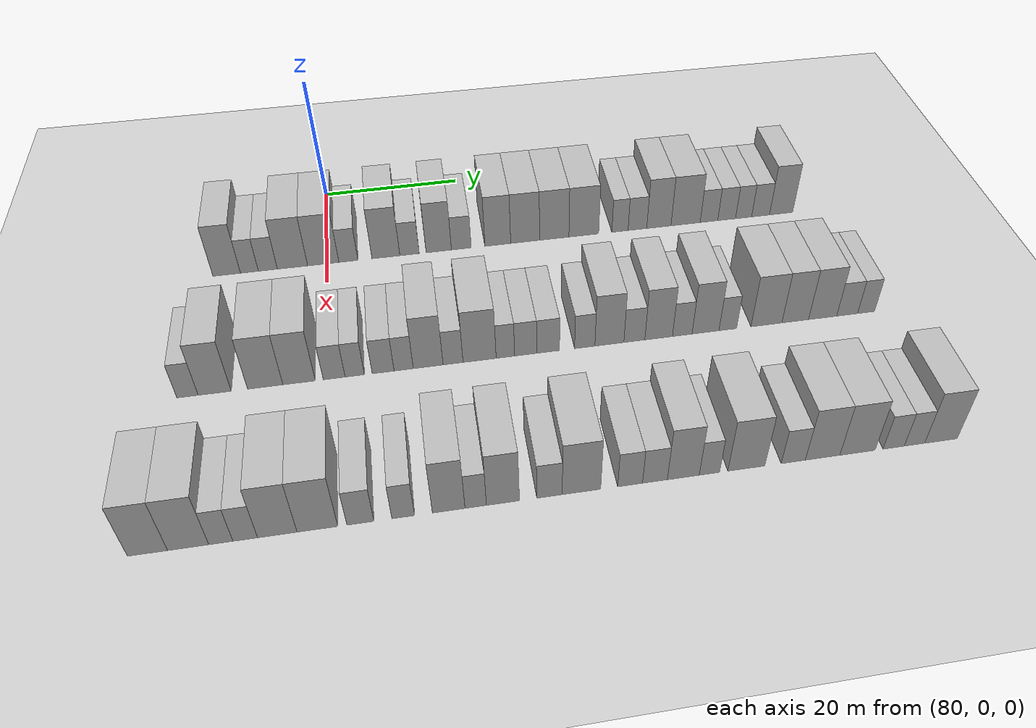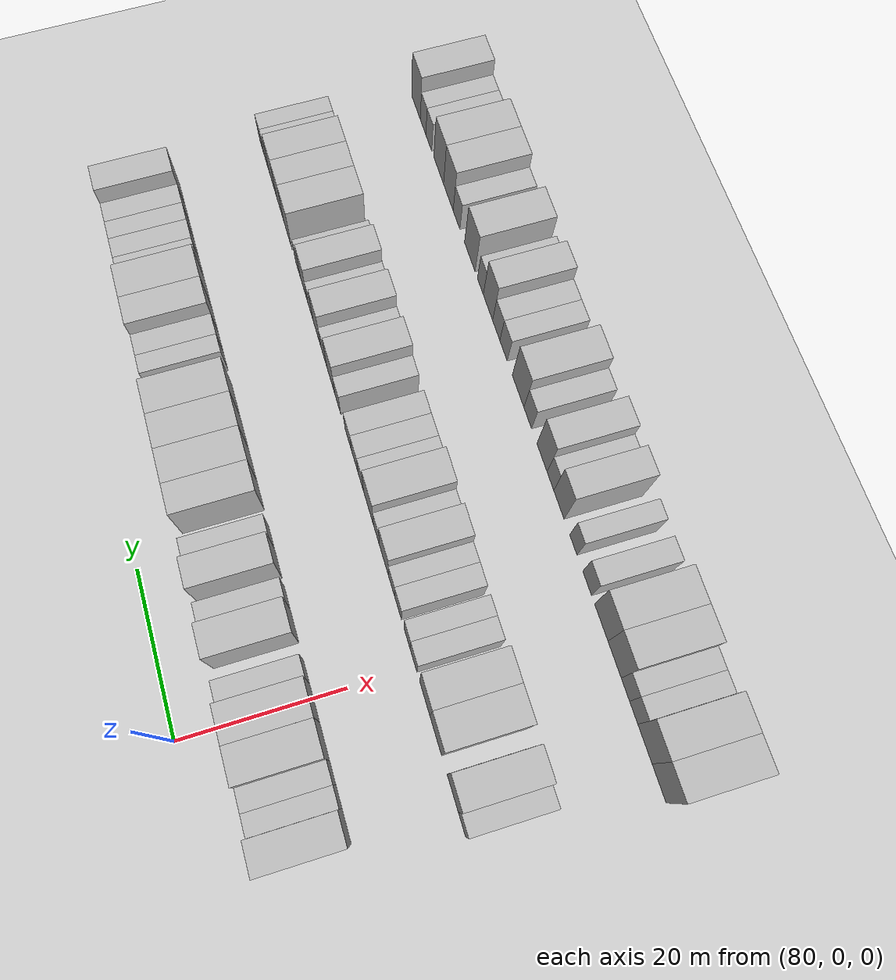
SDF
<sdf version="1.6">
 <world name="default">
  <include>
   <name>ground_plane_2</name>
   <uri>model://HANNAS_ground_plane</uri>
   <pose>100 0 0  0 0 0</pose>
  </include>
  <model name="building_627">
   <static>1</static>
   <pose>91.0000 -13.8945 0 0.000000 0.000000 0.000000</pose>
   <link name="link">
    <pose>0 0 4.50 0 0 0</pose>
    <collision name="collision"><geometry><box><size>10.0000 3.7850 9.0000</size></box></geometry></collision>
    <visual name="visual">
     <cast_shadows>0</cast_shadows>
     <geometry><box><size>10.0000 3.7850 9.0000</size></box></geometry>
     <material>
      <script>
       <uri>model://HANNAS_wall/materials/scripts</uri>
       <uri>model://HANNAS_wall/materials/textures</uri>
       <name>vrc/HANNAS_wall</name>
      </script>
     </material>
    </visual>
   </link>
  </model>
  <model name="building_628">
   <static>1</static>
   <pose>91.0000 -10.7650 0 0.000000 0.000000 0.000000</pose>
   <link name="link">
    <pose>0 0 3.00 0 0 0</pose>
    <collision name="collision"><geometry><box><size>10.0000 2.4740 6.0000</size></box></geometry></collision>
    <visual name="visual">
     <cast_shadows>0</cast_shadows>
     <geometry><box><size>10.0000 2.4740 6.0000</size></box></geometry>
     <material>
      <script>
       <uri>model://HANNAS_wall/materials/scripts</uri>
       <uri>model://HANNAS_wall/materials/textures</uri>
       <name>vrc/HANNAS_wall</name>
      </script>
     </material>
    </visual>
   </link>
  </model>
  <model name="building_629">
   <static>1</static>
   <pose>91.0000 -8.2067 0 0.000000 0.000000 0.000000</pose>
   <link name="link">
    <pose>0 0 3.00 0 0 0</pose>
    <collision name="collision"><geometry><box><size>10.0000 2.6427 6.0000</size></box></geometry></collision>
    <visual name="visual">
     <cast_shadows>0</cast_shadows>
     <geometry><box><size>10.0000 2.6427 6.0000</size></box></geometry>
     <material>
      <script>
       <uri>model://HANNAS_wall/materials/scripts</uri>
       <uri>model://HANNAS_wall/materials/textures</uri>
       <name>vrc/HANNAS_wall</name>
      </script>
     </material>
    </visual>
   </link>
  </model>
  <model name="building_630">
   <static>1</static>
   <pose>91.0000 -4.7748 0 0.000000 0.000000 0.000000</pose>
   <link name="link">
    <pose>0 0 4.50 0 0 0</pose>
    <collision name="collision"><geometry><box><size>10.0000 4.2210 9.0000</size></box></geometry></collision>
    <visual name="visual">
     <cast_shadows>0</cast_shadows>
     <geometry><box><size>10.0000 4.2210 9.0000</size></box></geometry>
     <material>
      <script>
       <uri>model://HANNAS_wall/materials/scripts</uri>
       <uri>model://HANNAS_wall/materials/textures</uri>
       <name>vrc/HANNAS_wall</name>
      </script>
     </material>
    </visual>
   </link>
  </model>
  <model name="building_631">
   <static>1</static>
   <pose>91.0000 -0.4696 0 0.000000 0.000000 0.000000</pose>
   <link name="link">
    <pose>0 0 4.50 0 0 0</pose>
    <collision name="collision"><geometry><box><size>10.0000 4.3893 9.0000</size></box></geometry></collision>
    <visual name="visual">
     <cast_shadows>0</cast_shadows>
     <geometry><box><size>10.0000 4.3893 9.0000</size></box></geometry>
     <material>
      <script>
       <uri>model://HANNAS_wall/materials/scripts</uri>
       <uri>model://HANNAS_wall/materials/textures</uri>
       <name>vrc/HANNAS_wall</name>
      </script>
     </material>
    </visual>
   </link>
  </model>
  <model name="building_632">
   <static>1</static>
   <pose>91.0000 3.0725 0 0.000000 0.000000 0.000000</pose>
   <link name="link">
    <pose>0 0 3.00 0 0 0</pose>
    <collision name="collision"><geometry><box><size>10.0000 2.6950 6.0000</size></box></geometry></collision>
    <visual name="visual">
     <cast_shadows>0</cast_shadows>
     <geometry><box><size>10.0000 2.6950 6.0000</size></box></geometry>
     <material>
      <script>
       <uri>model://HANNAS_wall/materials/scripts</uri>
       <uri>model://HANNAS_wall/materials/textures</uri>
       <name>vrc/HANNAS_wall</name>
      </script>
     </material>
    </visual>
   </link>
  </model>
  <model name="building_633">
   <static>1</static>
   <pose>91.0000 8.4111 0 0.000000 0.000000 0.000000</pose>
   <link name="link">
    <pose>0 0 4.50 0 0 0</pose>
    <collision name="collision"><geometry><box><size>10.0000 3.9822 9.0000</size></box></geometry></collision>
    <visual name="visual">
     <cast_shadows>0</cast_shadows>
     <geometry><box><size>10.0000 3.9822 9.0000</size></box></geometry>
     <material>
      <script>
       <uri>model://HANNAS_wall/materials/scripts</uri>
       <uri>model://HANNAS_wall/materials/textures</uri>
       <name>vrc/HANNAS_wall</name>
      </script>
     </material>
    </visual>
   </link>
  </model>
  <model name="building_634">
   <static>1</static>
   <pose>91.0000 11.7870 0 0.000000 0.000000 0.000000</pose>
   <link name="link">
    <pose>0 0 3.00 0 0 0</pose>
    <collision name="collision"><geometry><box><size>10.0000 2.7695 6.0000</size></box></geometry></collision>
    <visual name="visual">
     <cast_shadows>0</cast_shadows>
     <geometry><box><size>10.0000 2.7695 6.0000</size></box></geometry>
     <material>
      <script>
       <uri>model://HANNAS_wall/materials/scripts</uri>
       <uri>model://HANNAS_wall/materials/textures</uri>
       <name>vrc/HANNAS_wall</name>
      </script>
     </material>
    </visual>
   </link>
  </model>
  <model name="building_635">
   <static>1</static>
   <pose>91.0000 16.0039 0 0.000000 0.000000 0.000000</pose>
   <link name="link">
    <pose>0 0 4.50 0 0 0</pose>
    <collision name="collision"><geometry><box><size>10.0000 3.6644 9.0000</size></box></geometry></collision>
    <visual name="visual">
     <cast_shadows>0</cast_shadows>
     <geometry><box><size>10.0000 3.6644 9.0000</size></box></geometry>
     <material>
      <script>
       <uri>model://HANNAS_wall/materials/scripts</uri>
       <uri>model://HANNAS_wall/materials/textures</uri>
       <name>vrc/HANNAS_wall</name>
      </script>
     </material>
    </visual>
   </link>
  </model>
  <model name="building_636">
   <static>1</static>
   <pose>91.0000 19.2733 0 0.000000 0.000000 0.000000</pose>
   <link name="link">
    <pose>0 0 3.00 0 0 0</pose>
    <collision name="collision"><geometry><box><size>10.0000 2.8745 6.0000</size></box></geometry></collision>
    <visual name="visual">
     <cast_shadows>0</cast_shadows>
     <geometry><box><size>10.0000 2.8745 6.0000</size></box></geometry>
     <material>
      <script>
       <uri>model://HANNAS_wall/materials/scripts</uri>
       <uri>model://HANNAS_wall/materials/textures</uri>
       <name>vrc/HANNAS_wall</name>
      </script>
     </material>
    </visual>
   </link>
  </model>
  <model name="building_637">
   <static>1</static>
   <pose>91.0000 24.6001 0 0.000000 0.000000 0.000000</pose>
   <link name="link">
    <pose>0 0 4.50 0 0 0</pose>
    <collision name="collision"><geometry><box><size>10.0000 3.7789 9.0000</size></box></geometry></collision>
    <visual name="visual">
     <cast_shadows>0</cast_shadows>
     <geometry><box><size>10.0000 3.7789 9.0000</size></box></geometry>
     <material>
      <script>
       <uri>model://HANNAS_wall/materials/scripts</uri>
       <uri>model://HANNAS_wall/materials/textures</uri>
       <name>vrc/HANNAS_wall</name>
      </script>
     </material>
    </visual>
   </link>
  </model>
  <model name="building_638">
   <static>1</static>
   <pose>91.0000 28.6218 0 0.000000 0.000000 0.000000</pose>
   <link name="link">
    <pose>0 0 4.50 0 0 0</pose>
    <collision name="collision"><geometry><box><size>10.0000 4.2646 9.0000</size></box></geometry></collision>
    <visual name="visual">
     <cast_shadows>0</cast_shadows>
     <geometry><box><size>10.0000 4.2646 9.0000</size></box></geometry>
     <material>
      <script>
       <uri>model://HANNAS_wall/materials/scripts</uri>
       <uri>model://HANNAS_wall/materials/textures</uri>
       <name>vrc/HANNAS_wall</name>
      </script>
     </material>
    </visual>
   </link>
  </model>
  <model name="building_639">
   <static>1</static>
   <pose>91.0000 32.9350 0 0.000000 0.000000 0.000000</pose>
   <link name="link">
    <pose>0 0 4.50 0 0 0</pose>
    <collision name="collision"><geometry><box><size>10.0000 4.3617 9.0000</size></box></geometry></collision>
    <visual name="visual">
     <cast_shadows>0</cast_shadows>
     <geometry><box><size>10.0000 4.3617 9.0000</size></box></geometry>
     <material>
      <script>
       <uri>model://HANNAS_wall/materials/scripts</uri>
       <uri>model://HANNAS_wall/materials/textures</uri>
       <name>vrc/HANNAS_wall</name>
      </script>
     </material>
    </visual>
   </link>
  </model>
  <model name="building_640">
   <static>1</static>
   <pose>91.0000 37.3389 0 0.000000 0.000000 0.000000</pose>
   <link name="link">
    <pose>0 0 4.50 0 0 0</pose>
    <collision name="collision"><geometry><box><size>10.0000 4.4461 9.0000</size></box></geometry></collision>
    <visual name="visual">
     <cast_shadows>0</cast_shadows>
     <geometry><box><size>10.0000 4.4461 9.0000</size></box></geometry>
     <material>
      <script>
       <uri>model://HANNAS_wall/materials/scripts</uri>
       <uri>model://HANNAS_wall/materials/textures</uri>
       <name>vrc/HANNAS_wall</name>
      </script>
     </material>
    </visual>
   </link>
  </model>
  <model name="building_641">
   <static>1</static>
   <pose>91.0000 42.7816 0 0.000000 0.000000 0.000000</pose>
   <link name="link">
    <pose>0 0 3.00 0 0 0</pose>
    <collision name="collision"><geometry><box><size>10.0000 2.4393 6.0000</size></box></geometry></collision>
    <visual name="visual">
     <cast_shadows>0</cast_shadows>
     <geometry><box><size>10.0000 2.4393 6.0000</size></box></geometry>
     <material>
      <script>
       <uri>model://HANNAS_wall/materials/scripts</uri>
       <uri>model://HANNAS_wall/materials/textures</uri>
       <name>vrc/HANNAS_wall</name>
      </script>
     </material>
    </visual>
   </link>
  </model>
  <model name="building_642">
   <static>1</static>
   <pose>91.0000 45.4196 0 0.000000 0.000000 0.000000</pose>
   <link name="link">
    <pose>0 0 3.00 0 0 0</pose>
    <collision name="collision"><geometry><box><size>10.0000 2.8368 6.0000</size></box></geometry></collision>
    <visual name="visual">
     <cast_shadows>0</cast_shadows>
     <geometry><box><size>10.0000 2.8368 6.0000</size></box></geometry>
     <material>
      <script>
       <uri>model://HANNAS_wall/materials/scripts</uri>
       <uri>model://HANNAS_wall/materials/textures</uri>
       <name>vrc/HANNAS_wall</name>
      </script>
     </material>
    </visual>
   </link>
  </model>
  <model name="building_643">
   <static>1</static>
   <pose>91.0000 48.6858 0 0.000000 0.000000 0.000000</pose>
   <link name="link">
    <pose>0 0 4.50 0 0 0</pose>
    <collision name="collision"><geometry><box><size>10.0000 3.6956 9.0000</size></box></geometry></collision>
    <visual name="visual">
     <cast_shadows>0</cast_shadows>
     <geometry><box><size>10.0000 3.6956 9.0000</size></box></geometry>
     <material>
      <script>
       <uri>model://HANNAS_wall/materials/scripts</uri>
       <uri>model://HANNAS_wall/materials/textures</uri>
       <name>vrc/HANNAS_wall</name>
      </script>
     </material>
    </visual>
   </link>
  </model>
  <model name="building_644">
   <static>1</static>
   <pose>91.0000 52.7779 0 0.000000 0.000000 0.000000</pose>
   <link name="link">
    <pose>0 0 4.50 0 0 0</pose>
    <collision name="collision"><geometry><box><size>10.0000 4.4885 9.0000</size></box></geometry></collision>
    <visual name="visual">
     <cast_shadows>0</cast_shadows>
     <geometry><box><size>10.0000 4.4885 9.0000</size></box></geometry>
     <material>
      <script>
       <uri>model://HANNAS_wall/materials/scripts</uri>
       <uri>model://HANNAS_wall/materials/textures</uri>
       <name>vrc/HANNAS_wall</name>
      </script>
     </material>
    </visual>
   </link>
  </model>
  <model name="building_645">
   <static>1</static>
   <pose>91.0000 56.3801 0 0.000000 0.000000 0.000000</pose>
   <link name="link">
    <pose>0 0 3.00 0 0 0</pose>
    <collision name="collision"><geometry><box><size>10.0000 2.7161 6.0000</size></box></geometry></collision>
    <visual name="visual">
     <cast_shadows>0</cast_shadows>
     <geometry><box><size>10.0000 2.7161 6.0000</size></box></geometry>
     <material>
      <script>
       <uri>model://HANNAS_wall/materials/scripts</uri>
       <uri>model://HANNAS_wall/materials/textures</uri>
       <name>vrc/HANNAS_wall</name>
      </script>
     </material>
    </visual>
   </link>
  </model>
  <model name="building_646">
   <static>1</static>
   <pose>91.0000 59.1178 0 0.000000 0.000000 0.000000</pose>
   <link name="link">
    <pose>0 0 3.00 0 0 0</pose>
    <collision name="collision"><geometry><box><size>10.0000 2.7592 6.0000</size></box></geometry></collision>
    <visual name="visual">
     <cast_shadows>0</cast_shadows>
     <geometry><box><size>10.0000 2.7592 6.0000</size></box></geometry>
     <material>
      <script>
       <uri>model://HANNAS_wall/materials/scripts</uri>
       <uri>model://HANNAS_wall/materials/textures</uri>
       <name>vrc/HANNAS_wall</name>
      </script>
     </material>
    </visual>
   </link>
  </model>
  <model name="building_647">
   <static>1</static>
   <pose>91.0000 61.7543 0 0.000000 0.000000 0.000000</pose>
   <link name="link">
    <pose>0 0 3.00 0 0 0</pose>
    <collision name="collision"><geometry><box><size>10.0000 2.5138 6.0000</size></box></geometry></collision>
    <visual name="visual">
     <cast_shadows>0</cast_shadows>
     <geometry><box><size>10.0000 2.5138 6.0000</size></box></geometry>
     <material>
      <script>
       <uri>model://HANNAS_wall/materials/scripts</uri>
       <uri>model://HANNAS_wall/materials/textures</uri>
       <name>vrc/HANNAS_wall</name>
      </script>
     </material>
    </visual>
   </link>
  </model>
  <model name="building_648">
   <static>1</static>
   <pose>91.0000 64.4069 0 0.000000 0.000000 0.000000</pose>
   <link name="link">
    <pose>0 0 3.00 0 0 0</pose>
    <collision name="collision"><geometry><box><size>10.0000 2.7914 6.0000</size></box></geometry></collision>
    <visual name="visual">
     <cast_shadows>0</cast_shadows>
     <geometry><box><size>10.0000 2.7914 6.0000</size></box></geometry>
     <material>
      <script>
       <uri>model://HANNAS_wall/materials/scripts</uri>
       <uri>model://HANNAS_wall/materials/textures</uri>
       <name>vrc/HANNAS_wall</name>
      </script>
     </material>
    </visual>
   </link>
  </model>
  <model name="building_649">
   <static>1</static>
   <pose>91.0000 67.6287 0 0.000000 0.000000 0.000000</pose>
   <link name="link">
    <pose>0 0 4.50 0 0 0</pose>
    <collision name="collision"><geometry><box><size>10.0000 3.6523 9.0000</size></box></geometry></collision>
    <visual name="visual">
     <cast_shadows>0</cast_shadows>
     <geometry><box><size>10.0000 3.6523 9.0000</size></box></geometry>
     <material>
      <script>
       <uri>model://HANNAS_wall/materials/scripts</uri>
       <uri>model://HANNAS_wall/materials/textures</uri>
       <name>vrc/HANNAS_wall</name>
      </script>
     </material>
    </visual>
   </link>
  </model>
  <model name="building_817">
   <static>1</static>
   <pose>113.0000 -17.2399 0 0.000000 0.000000 0.000000</pose>
   <link name="link">
    <pose>0 0 3.00 0 0 0</pose>
    <collision name="collision"><geometry><box><size>10.0000 2.5802 6.0000</size></box></geometry></collision>
    <visual name="visual">
     <cast_shadows>0</cast_shadows>
     <geometry><box><size>10.0000 2.5802 6.0000</size></box></geometry>
     <material>
      <script>
       <uri>model://HANNAS_wall/materials/scripts</uri>
       <uri>model://HANNAS_wall/materials/textures</uri>
       <name>vrc/HANNAS_wall</name>
      </script>
     </material>
    </visual>
   </link>
  </model>
  <model name="building_818">
   <static>1</static>
   <pose>113.0000 -13.9362 0 0.000000 0.000000 0.000000</pose>
   <link name="link">
    <pose>0 0 4.50 0 0 0</pose>
    <collision name="collision"><geometry><box><size>10.0000 4.0271 9.0000</size></box></geometry></collision>
    <visual name="visual">
     <cast_shadows>0</cast_shadows>
     <geometry><box><size>10.0000 4.0271 9.0000</size></box></geometry>
     <material>
      <script>
       <uri>model://HANNAS_wall/materials/scripts</uri>
       <uri>model://HANNAS_wall/materials/textures</uri>
       <name>vrc/HANNAS_wall</name>
      </script>
     </material>
    </visual>
   </link>
  </model>
  <model name="building_819">
   <static>1</static>
   <pose>113.0000 -7.7436 0 0.000000 0.000000 0.000000</pose>
   <link name="link">
    <pose>0 0 4.50 0 0 0</pose>
    <collision name="collision"><geometry><box><size>10.0000 4.3582 9.0000</size></box></geometry></collision>
    <visual name="visual">
     <cast_shadows>0</cast_shadows>
     <geometry><box><size>10.0000 4.3582 9.0000</size></box></geometry>
     <material>
      <script>
       <uri>model://HANNAS_wall/materials/scripts</uri>
       <uri>model://HANNAS_wall/materials/textures</uri>
       <name>vrc/HANNAS_wall</name>
      </script>
     </material>
    </visual>
   </link>
  </model>
  <model name="building_820">
   <static>1</static>
   <pose>113.0000 -3.5494 0 0.000000 0.000000 0.000000</pose>
   <link name="link">
    <pose>0 0 4.50 0 0 0</pose>
    <collision name="collision"><geometry><box><size>10.0000 4.0301 9.0000</size></box></geometry></collision>
    <visual name="visual">
     <cast_shadows>0</cast_shadows>
     <geometry><box><size>10.0000 4.0301 9.0000</size></box></geometry>
     <material>
      <script>
       <uri>model://HANNAS_wall/materials/scripts</uri>
       <uri>model://HANNAS_wall/materials/textures</uri>
       <name>vrc/HANNAS_wall</name>
      </script>
     </material>
    </visual>
   </link>
  </model>
  <model name="building_821">
   <static>1</static>
   <pose>113.0000 0.8319 0 0.000000 0.000000 0.000000</pose>
   <link name="link">
    <pose>0 0 3.00 0 0 0</pose>
    <collision name="collision"><geometry><box><size>10.0000 2.7326 6.0000</size></box></geometry></collision>
    <visual name="visual">
     <cast_shadows>0</cast_shadows>
     <geometry><box><size>10.0000 2.7326 6.0000</size></box></geometry>
     <material>
      <script>
       <uri>model://HANNAS_wall/materials/scripts</uri>
       <uri>model://HANNAS_wall/materials/textures</uri>
       <name>vrc/HANNAS_wall</name>
      </script>
     </material>
    </visual>
   </link>
  </model>
  <model name="building_822">
   <static>1</static>
   <pose>113.0000 3.4112 0 0.000000 0.000000 0.000000</pose>
   <link name="link">
    <pose>0 0 3.00 0 0 0</pose>
    <collision name="collision"><geometry><box><size>10.0000 2.4259 6.0000</size></box></geometry></collision>
    <visual name="visual">
     <cast_shadows>0</cast_shadows>
     <geometry><box><size>10.0000 2.4259 6.0000</size></box></geometry>
     <material>
      <script>
       <uri>model://HANNAS_wall/materials/scripts</uri>
       <uri>model://HANNAS_wall/materials/textures</uri>
       <name>vrc/HANNAS_wall</name>
      </script>
     </material>
    </visual>
   </link>
  </model>
  <model name="building_823">
   <static>1</static>
   <pose>113.0000 7.0108 0 0.000000 0.000000 0.000000</pose>
   <link name="link">
    <pose>0 0 3.00 0 0 0</pose>
    <collision name="collision"><geometry><box><size>10.0000 2.7734 6.0000</size></box></geometry></collision>
    <visual name="visual">
     <cast_shadows>0</cast_shadows>
     <geometry><box><size>10.0000 2.7734 6.0000</size></box></geometry>
     <material>
      <script>
       <uri>model://HANNAS_wall/materials/scripts</uri>
       <uri>model://HANNAS_wall/materials/textures</uri>
       <name>vrc/HANNAS_wall</name>
      </script>
     </material>
    </visual>
   </link>
  </model>
  <model name="building_824">
   <static>1</static>
   <pose>113.0000 9.6197 0 0.000000 0.000000 0.000000</pose>
   <link name="link">
    <pose>0 0 3.00 0 0 0</pose>
    <collision name="collision"><geometry><box><size>10.0000 2.4445 6.0000</size></box></geometry></collision>
    <visual name="visual">
     <cast_shadows>0</cast_shadows>
     <geometry><box><size>10.0000 2.4445 6.0000</size></box></geometry>
     <material>
      <script>
       <uri>model://HANNAS_wall/materials/scripts</uri>
       <uri>model://HANNAS_wall/materials/textures</uri>
       <name>vrc/HANNAS_wall</name>
      </script>
     </material>
    </visual>
   </link>
  </model>
  <model name="building_825">
   <static>1</static>
   <pose>113.0000 12.7508 0 0.000000 0.000000 0.000000</pose>
   <link name="link">
    <pose>0 0 4.50 0 0 0</pose>
    <collision name="collision"><geometry><box><size>10.0000 3.8176 9.0000</size></box></geometry></collision>
    <visual name="visual">
     <cast_shadows>0</cast_shadows>
     <geometry><box><size>10.0000 3.8176 9.0000</size></box></geometry>
     <material>
      <script>
       <uri>model://HANNAS_wall/materials/scripts</uri>
       <uri>model://HANNAS_wall/materials/textures</uri>
       <name>vrc/HANNAS_wall</name>
      </script>
     </material>
    </visual>
   </link>
  </model>
  <model name="building_826">
   <static>1</static>
   <pose>113.0000 15.9467 0 0.000000 0.000000 0.000000</pose>
   <link name="link">
    <pose>0 0 3.00 0 0 0</pose>
    <collision name="collision"><geometry><box><size>10.0000 2.5741 6.0000</size></box></geometry></collision>
    <visual name="visual">
     <cast_shadows>0</cast_shadows>
     <geometry><box><size>10.0000 2.5741 6.0000</size></box></geometry>
     <material>
      <script>
       <uri>model://HANNAS_wall/materials/scripts</uri>
       <uri>model://HANNAS_wall/materials/textures</uri>
       <name>vrc/HANNAS_wall</name>
      </script>
     </material>
    </visual>
   </link>
  </model>
  <model name="building_827">
   <static>1</static>
   <pose>113.0000 19.3842 0 0.000000 0.000000 0.000000</pose>
   <link name="link">
    <pose>0 0 4.50 0 0 0</pose>
    <collision name="collision"><geometry><box><size>10.0000 4.3009 9.0000</size></box></geometry></collision>
    <visual name="visual">
     <cast_shadows>0</cast_shadows>
     <geometry><box><size>10.0000 4.3009 9.0000</size></box></geometry>
     <material>
      <script>
       <uri>model://HANNAS_wall/materials/scripts</uri>
       <uri>model://HANNAS_wall/materials/textures</uri>
       <name>vrc/HANNAS_wall</name>
      </script>
     </material>
    </visual>
   </link>
  </model>
  <model name="building_828">
   <static>1</static>
   <pose>113.0000 22.7429 0 0.000000 0.000000 0.000000</pose>
   <link name="link">
    <pose>0 0 3.00 0 0 0</pose>
    <collision name="collision"><geometry><box><size>10.0000 2.4165 6.0000</size></box></geometry></collision>
    <visual name="visual">
     <cast_shadows>0</cast_shadows>
     <geometry><box><size>10.0000 2.4165 6.0000</size></box></geometry>
     <material>
      <script>
       <uri>model://HANNAS_wall/materials/scripts</uri>
       <uri>model://HANNAS_wall/materials/textures</uri>
       <name>vrc/HANNAS_wall</name>
      </script>
     </material>
    </visual>
   </link>
  </model>
  <model name="building_829">
   <static>1</static>
   <pose>113.0000 25.4057 0 0.000000 0.000000 0.000000</pose>
   <link name="link">
    <pose>0 0 3.00 0 0 0</pose>
    <collision name="collision"><geometry><box><size>10.0000 2.9091 6.0000</size></box></geometry></collision>
    <visual name="visual">
     <cast_shadows>0</cast_shadows>
     <geometry><box><size>10.0000 2.9091 6.0000</size></box></geometry>
     <material>
      <script>
       <uri>model://HANNAS_wall/materials/scripts</uri>
       <uri>model://HANNAS_wall/materials/textures</uri>
       <name>vrc/HANNAS_wall</name>
      </script>
     </material>
    </visual>
   </link>
  </model>
  <model name="building_830">
   <static>1</static>
   <pose>113.0000 28.3546 0 0.000000 0.000000 0.000000</pose>
   <link name="link">
    <pose>0 0 3.00 0 0 0</pose>
    <collision name="collision"><geometry><box><size>10.0000 2.9888 6.0000</size></box></geometry></collision>
    <visual name="visual">
     <cast_shadows>0</cast_shadows>
     <geometry><box><size>10.0000 2.9888 6.0000</size></box></geometry>
     <material>
      <script>
       <uri>model://HANNAS_wall/materials/scripts</uri>
       <uri>model://HANNAS_wall/materials/textures</uri>
       <name>vrc/HANNAS_wall</name>
      </script>
     </material>
    </visual>
   </link>
  </model>
  <model name="building_831">
   <static>1</static>
   <pose>113.0000 33.2009 0 0.000000 0.000000 0.000000</pose>
   <link name="link">
    <pose>0 0 3.00 0 0 0</pose>
    <collision name="collision"><geometry><box><size>10.0000 2.7037 6.0000</size></box></geometry></collision>
    <visual name="visual">
     <cast_shadows>0</cast_shadows>
     <geometry><box><size>10.0000 2.7037 6.0000</size></box></geometry>
     <material>
      <script>
       <uri>model://HANNAS_wall/materials/scripts</uri>
       <uri>model://HANNAS_wall/materials/textures</uri>
       <name>vrc/HANNAS_wall</name>
      </script>
     </material>
    </visual>
   </link>
  </model>
  <model name="building_832">
   <static>1</static>
   <pose>113.0000 36.4939 0 0.000000 0.000000 0.000000</pose>
   <link name="link">
    <pose>0 0 4.50 0 0 0</pose>
    <collision name="collision"><geometry><box><size>10.0000 3.8823 9.0000</size></box></geometry></collision>
    <visual name="visual">
     <cast_shadows>0</cast_shadows>
     <geometry><box><size>10.0000 3.8823 9.0000</size></box></geometry>
     <material>
      <script>
       <uri>model://HANNAS_wall/materials/scripts</uri>
       <uri>model://HANNAS_wall/materials/textures</uri>
       <name>vrc/HANNAS_wall</name>
      </script>
     </material>
    </visual>
   </link>
  </model>
  <model name="building_833">
   <static>1</static>
   <pose>113.0000 39.8468 0 0.000000 0.000000 0.000000</pose>
   <link name="link">
    <pose>0 0 3.00 0 0 0</pose>
    <collision name="collision"><geometry><box><size>10.0000 2.8234 6.0000</size></box></geometry></collision>
    <visual name="visual">
     <cast_shadows>0</cast_shadows>
     <geometry><box><size>10.0000 2.8234 6.0000</size></box></geometry>
     <material>
      <script>
       <uri>model://HANNAS_wall/materials/scripts</uri>
       <uri>model://HANNAS_wall/materials/textures</uri>
       <name>vrc/HANNAS_wall</name>
      </script>
     </material>
    </visual>
   </link>
  </model>
  <model name="building_834">
   <static>1</static>
   <pose>113.0000 43.1338 0 0.000000 0.000000 0.000000</pose>
   <link name="link">
    <pose>0 0 4.50 0 0 0</pose>
    <collision name="collision"><geometry><box><size>10.0000 3.7506 9.0000</size></box></geometry></collision>
    <visual name="visual">
     <cast_shadows>0</cast_shadows>
     <geometry><box><size>10.0000 3.7506 9.0000</size></box></geometry>
     <material>
      <script>
       <uri>model://HANNAS_wall/materials/scripts</uri>
       <uri>model://HANNAS_wall/materials/textures</uri>
       <name>vrc/HANNAS_wall</name>
      </script>
     </material>
    </visual>
   </link>
  </model>
  <model name="building_835">
   <static>1</static>
   <pose>113.0000 46.3488 0 0.000000 0.000000 0.000000</pose>
   <link name="link">
    <pose>0 0 3.00 0 0 0</pose>
    <collision name="collision"><geometry><box><size>10.0000 2.6794 6.0000</size></box></geometry></collision>
    <visual name="visual">
     <cast_shadows>0</cast_shadows>
     <geometry><box><size>10.0000 2.6794 6.0000</size></box></geometry>
     <material>
      <script>
       <uri>model://HANNAS_wall/materials/scripts</uri>
       <uri>model://HANNAS_wall/materials/textures</uri>
       <name>vrc/HANNAS_wall</name>
      </script>
     </material>
    </visual>
   </link>
  </model>
  <model name="building_836">
   <static>1</static>
   <pose>113.0000 49.5323 0 0.000000 0.000000 0.000000</pose>
   <link name="link">
    <pose>0 0 4.50 0 0 0</pose>
    <collision name="collision"><geometry><box><size>10.0000 3.6877 9.0000</size></box></geometry></collision>
    <visual name="visual">
     <cast_shadows>0</cast_shadows>
     <geometry><box><size>10.0000 3.6877 9.0000</size></box></geometry>
     <material>
      <script>
       <uri>model://HANNAS_wall/materials/scripts</uri>
       <uri>model://HANNAS_wall/materials/textures</uri>
       <name>vrc/HANNAS_wall</name>
      </script>
     </material>
    </visual>
   </link>
  </model>
  <model name="building_837">
   <static>1</static>
   <pose>113.0000 52.5916 0 0.000000 0.000000 0.000000</pose>
   <link name="link">
    <pose>0 0 3.00 0 0 0</pose>
    <collision name="collision"><geometry><box><size>10.0000 2.4307 6.0000</size></box></geometry></collision>
    <visual name="visual">
     <cast_shadows>0</cast_shadows>
     <geometry><box><size>10.0000 2.4307 6.0000</size></box></geometry>
     <material>
      <script>
       <uri>model://HANNAS_wall/materials/scripts</uri>
       <uri>model://HANNAS_wall/materials/textures</uri>
       <name>vrc/HANNAS_wall</name>
      </script>
     </material>
    </visual>
   </link>
  </model>
  <model name="building_838">
   <static>1</static>
   <pose>113.0000 57.9562 0 0.000000 0.000000 0.000000</pose>
   <link name="link">
    <pose>0 0 4.50 0 0 0</pose>
    <collision name="collision"><geometry><box><size>10.0000 4.2986 9.0000</size></box></geometry></collision>
    <visual name="visual">
     <cast_shadows>0</cast_shadows>
     <geometry><box><size>10.0000 4.2986 9.0000</size></box></geometry>
     <material>
      <script>
       <uri>model://HANNAS_wall/materials/scripts</uri>
       <uri>model://HANNAS_wall/materials/textures</uri>
       <name>vrc/HANNAS_wall</name>
      </script>
     </material>
    </visual>
   </link>
  </model>
  <model name="building_839">
   <static>1</static>
   <pose>113.0000 61.9804 0 0.000000 0.000000 0.000000</pose>
   <link name="link">
    <pose>0 0 4.50 0 0 0</pose>
    <collision name="collision"><geometry><box><size>10.0000 3.7497 9.0000</size></box></geometry></collision>
    <visual name="visual">
     <cast_shadows>0</cast_shadows>
     <geometry><box><size>10.0000 3.7497 9.0000</size></box></geometry>
     <material>
      <script>
       <uri>model://HANNAS_wall/materials/scripts</uri>
       <uri>model://HANNAS_wall/materials/textures</uri>
       <name>vrc/HANNAS_wall</name>
      </script>
     </material>
    </visual>
   </link>
  </model>
  <model name="building_840">
   <static>1</static>
   <pose>113.0000 65.8432 0 0.000000 0.000000 0.000000</pose>
   <link name="link">
    <pose>0 0 4.50 0 0 0</pose>
    <collision name="collision"><geometry><box><size>10.0000 3.9759 9.0000</size></box></geometry></collision>
    <visual name="visual">
     <cast_shadows>0</cast_shadows>
     <geometry><box><size>10.0000 3.9759 9.0000</size></box></geometry>
     <material>
      <script>
       <uri>model://HANNAS_wall/materials/scripts</uri>
       <uri>model://HANNAS_wall/materials/textures</uri>
       <name>vrc/HANNAS_wall</name>
      </script>
     </material>
    </visual>
   </link>
  </model>
  <model name="building_841">
   <static>1</static>
   <pose>113.0000 69.3154 0 0.000000 0.000000 0.000000</pose>
   <link name="link">
    <pose>0 0 3.00 0 0 0</pose>
    <collision name="collision"><geometry><box><size>10.0000 2.9684 6.0000</size></box></geometry></collision>
    <visual name="visual">
     <cast_shadows>0</cast_shadows>
     <geometry><box><size>10.0000 2.9684 6.0000</size></box></geometry>
     <material>
      <script>
       <uri>model://HANNAS_wall/materials/scripts</uri>
       <uri>model://HANNAS_wall/materials/textures</uri>
       <name>vrc/HANNAS_wall</name>
      </script>
     </material>
    </visual>
   </link>
  </model>
  <model name="building_842">
   <static>1</static>
   <pose>113.0000 72.0156 0 0.000000 0.000000 0.000000</pose>
   <link name="link">
    <pose>0 0 3.00 0 0 0</pose>
    <collision name="collision"><geometry><box><size>10.0000 2.4321 6.0000</size></box></geometry></collision>
    <visual name="visual">
     <cast_shadows>0</cast_shadows>
     <geometry><box><size>10.0000 2.4321 6.0000</size></box></geometry>
     <material>
      <script>
       <uri>model://HANNAS_wall/materials/scripts</uri>
       <uri>model://HANNAS_wall/materials/textures</uri>
       <name>vrc/HANNAS_wall</name>
      </script>
     </material>
    </visual>
   </link>
  </model>
  <model name="building_1013">
   <static>1</static>
   <pose>135.0000 -19.4372 0 0.000000 0.000000 0.000000</pose>
   <link name="link">
    <pose>0 0 4.50 0 0 0</pose>
    <collision name="collision"><geometry><box><size>10.0000 4.2194 9.0000</size></box></geometry></collision>
    <visual name="visual">
     <cast_shadows>0</cast_shadows>
     <geometry><box><size>10.0000 4.2194 9.0000</size></box></geometry>
     <material>
      <script>
       <uri>model://HANNAS_wall/materials/scripts</uri>
       <uri>model://HANNAS_wall/materials/textures</uri>
       <name>vrc/HANNAS_wall</name>
      </script>
     </material>
    </visual>
   </link>
  </model>
  <model name="building_1014">
   <static>1</static>
   <pose>135.0000 -15.1419 0 0.000000 0.000000 0.000000</pose>
   <link name="link">
    <pose>0 0 4.50 0 0 0</pose>
    <collision name="collision"><geometry><box><size>10.0000 4.3711 9.0000</size></box></geometry></collision>
    <visual name="visual">
     <cast_shadows>0</cast_shadows>
     <geometry><box><size>10.0000 4.3711 9.0000</size></box></geometry>
     <material>
      <script>
       <uri>model://HANNAS_wall/materials/scripts</uri>
       <uri>model://HANNAS_wall/materials/textures</uri>
       <name>vrc/HANNAS_wall</name>
      </script>
     </material>
    </visual>
   </link>
  </model>
  <model name="building_1015">
   <static>1</static>
   <pose>135.0000 -11.6694 0 0.000000 0.000000 0.000000</pose>
   <link name="link">
    <pose>0 0 3.00 0 0 0</pose>
    <collision name="collision"><geometry><box><size>10.0000 2.5739 6.0000</size></box></geometry></collision>
    <visual name="visual">
     <cast_shadows>0</cast_shadows>
     <geometry><box><size>10.0000 2.5739 6.0000</size></box></geometry>
     <material>
      <script>
       <uri>model://HANNAS_wall/materials/scripts</uri>
       <uri>model://HANNAS_wall/materials/textures</uri>
       <name>vrc/HANNAS_wall</name>
      </script>
     </material>
    </visual>
   </link>
  </model>
  <model name="building_1016">
   <static>1</static>
   <pose>135.0000 -9.0603 0 0.000000 0.000000 0.000000</pose>
   <link name="link">
    <pose>0 0 3.00 0 0 0</pose>
    <collision name="collision"><geometry><box><size>10.0000 2.6442 6.0000</size></box></geometry></collision>
    <visual name="visual">
     <cast_shadows>0</cast_shadows>
     <geometry><box><size>10.0000 2.6442 6.0000</size></box></geometry>
     <material>
      <script>
       <uri>model://HANNAS_wall/materials/scripts</uri>
       <uri>model://HANNAS_wall/materials/textures</uri>
       <name>vrc/HANNAS_wall</name>
      </script>
     </material>
    </visual>
   </link>
  </model>
  <model name="building_1017">
   <static>1</static>
   <pose>135.0000 -5.6008 0 0.000000 0.000000 0.000000</pose>
   <link name="link">
    <pose>0 0 4.50 0 0 0</pose>
    <collision name="collision"><geometry><box><size>10.0000 4.2748 9.0000</size></box></geometry></collision>
    <visual name="visual">
     <cast_shadows>0</cast_shadows>
     <geometry><box><size>10.0000 4.2748 9.0000</size></box></geometry>
     <material>
      <script>
       <uri>model://HANNAS_wall/materials/scripts</uri>
       <uri>model://HANNAS_wall/materials/textures</uri>
       <name>vrc/HANNAS_wall</name>
      </script>
     </material>
    </visual>
   </link>
  </model>
  <model name="building_1018">
   <static>1</static>
   <pose>135.0000 -1.2370 0 0.000000 0.000000 0.000000</pose>
   <link name="link">
    <pose>0 0 4.50 0 0 0</pose>
    <collision name="collision"><geometry><box><size>10.0000 4.4529 9.0000</size></box></geometry></collision>
    <visual name="visual">
     <cast_shadows>0</cast_shadows>
     <geometry><box><size>10.0000 4.4529 9.0000</size></box></geometry>
     <material>
      <script>
       <uri>model://HANNAS_wall/materials/scripts</uri>
       <uri>model://HANNAS_wall/materials/textures</uri>
       <name>vrc/HANNAS_wall</name>
      </script>
     </material>
    </visual>
   </link>
  </model>
  <model name="building_1019">
   <static>1</static>
   <pose>135.0000 3.4788 0 0.000000 0.000000 0.000000</pose>
   <link name="link">
    <pose>0 0 3.00 0 0 0</pose>
    <collision name="collision"><geometry><box><size>10.0000 2.9786 6.0000</size></box></geometry></collision>
    <visual name="visual">
     <cast_shadows>0</cast_shadows>
     <geometry><box><size>10.0000 2.9786 6.0000</size></box></geometry>
     <material>
      <script>
       <uri>model://HANNAS_wall/materials/scripts</uri>
       <uri>model://HANNAS_wall/materials/textures</uri>
       <name>vrc/HANNAS_wall</name>
      </script>
     </material>
    </visual>
   </link>
  </model>
  <model name="building_1020">
   <static>1</static>
   <pose>135.0000 8.2328 0 0.000000 0.000000 0.000000</pose>
   <link name="link">
    <pose>0 0 3.00 0 0 0</pose>
    <collision name="collision"><geometry><box><size>10.0000 2.5295 6.0000</size></box></geometry></collision>
    <visual name="visual">
     <cast_shadows>0</cast_shadows>
     <geometry><box><size>10.0000 2.5295 6.0000</size></box></geometry>
     <material>
      <script>
       <uri>model://HANNAS_wall/materials/scripts</uri>
       <uri>model://HANNAS_wall/materials/textures</uri>
       <name>vrc/HANNAS_wall</name>
      </script>
     </material>
    </visual>
   </link>
  </model>
  <model name="building_1021">
   <static>1</static>
   <pose>135.0000 13.3348 0 0.000000 0.000000 0.000000</pose>
   <link name="link">
    <pose>0 0 4.50 0 0 0</pose>
    <collision name="collision"><geometry><box><size>10.0000 3.6744 9.0000</size></box></geometry></collision>
    <visual name="visual">
     <cast_shadows>0</cast_shadows>
     <geometry><box><size>10.0000 3.6744 9.0000</size></box></geometry>
     <material>
      <script>
       <uri>model://HANNAS_wall/materials/scripts</uri>
       <uri>model://HANNAS_wall/materials/textures</uri>
       <name>vrc/HANNAS_wall</name>
      </script>
     </material>
    </visual>
   </link>
  </model>
  <model name="building_1022">
   <static>1</static>
   <pose>135.0000 16.3880 0 0.000000 0.000000 0.000000</pose>
   <link name="link">
    <pose>0 0 3.00 0 0 0</pose>
    <collision name="collision"><geometry><box><size>10.0000 2.4319 6.0000</size></box></geometry></collision>
    <visual name="visual">
     <cast_shadows>0</cast_shadows>
     <geometry><box><size>10.0000 2.4319 6.0000</size></box></geometry>
     <material>
      <script>
       <uri>model://HANNAS_wall/materials/scripts</uri>
       <uri>model://HANNAS_wall/materials/textures</uri>
       <name>vrc/HANNAS_wall</name>
      </script>
     </material>
    </visual>
   </link>
  </model>
  <model name="building_1023">
   <static>1</static>
   <pose>135.0000 19.4879 0 0.000000 0.000000 0.000000</pose>
   <link name="link">
    <pose>0 0 4.50 0 0 0</pose>
    <collision name="collision"><geometry><box><size>10.0000 3.7679 9.0000</size></box></geometry></collision>
    <visual name="visual">
     <cast_shadows>0</cast_shadows>
     <geometry><box><size>10.0000 3.7679 9.0000</size></box></geometry>
     <material>
      <script>
       <uri>model://HANNAS_wall/materials/scripts</uri>
       <uri>model://HANNAS_wall/materials/textures</uri>
       <name>vrc/HANNAS_wall</name>
      </script>
     </material>
    </visual>
   </link>
  </model>
  <model name="building_1024">
   <static>1</static>
   <pose>135.0000 24.8360 0 0.000000 0.000000 0.000000</pose>
   <link name="link">
    <pose>0 0 3.00 0 0 0</pose>
    <collision name="collision"><geometry><box><size>10.0000 2.9283 6.0000</size></box></geometry></collision>
    <visual name="visual">
     <cast_shadows>0</cast_shadows>
     <geometry><box><size>10.0000 2.9283 6.0000</size></box></geometry>
     <material>
      <script>
       <uri>model://HANNAS_wall/materials/scripts</uri>
       <uri>model://HANNAS_wall/materials/textures</uri>
       <name>vrc/HANNAS_wall</name>
      </script>
     </material>
    </visual>
   </link>
  </model>
  <model name="building_1025">
   <static>1</static>
   <pose>135.0000 28.5378 0 0.000000 0.000000 0.000000</pose>
   <link name="link">
    <pose>0 0 4.50 0 0 0</pose>
    <collision name="collision"><geometry><box><size>10.0000 4.4753 9.0000</size></box></geometry></collision>
    <visual name="visual">
     <cast_shadows>0</cast_shadows>
     <geometry><box><size>10.0000 4.4753 9.0000</size></box></geometry>
     <material>
      <script>
       <uri>model://HANNAS_wall/materials/scripts</uri>
       <uri>model://HANNAS_wall/materials/textures</uri>
       <name>vrc/HANNAS_wall</name>
      </script>
     </material>
    </visual>
   </link>
  </model>
  <model name="building_1026">
   <static>1</static>
   <pose>135.0000 34.2388 0 0.000000 0.000000 0.000000</pose>
   <link name="link">
    <pose>0 0 3.00 0 0 0</pose>
    <collision name="collision"><geometry><box><size>10.0000 2.9267 6.0000</size></box></geometry></collision>
    <visual name="visual">
     <cast_shadows>0</cast_shadows>
     <geometry><box><size>10.0000 2.9267 6.0000</size></box></geometry>
     <material>
      <script>
       <uri>model://HANNAS_wall/materials/scripts</uri>
       <uri>model://HANNAS_wall/materials/textures</uri>
       <name>vrc/HANNAS_wall</name>
      </script>
     </material>
    </visual>
   </link>
  </model>
  <model name="building_1027">
   <static>1</static>
   <pose>135.0000 37.1736 0 0.000000 0.000000 0.000000</pose>
   <link name="link">
    <pose>0 0 3.00 0 0 0</pose>
    <collision name="collision"><geometry><box><size>10.0000 2.9429 6.0000</size></box></geometry></collision>
    <visual name="visual">
     <cast_shadows>0</cast_shadows>
     <geometry><box><size>10.0000 2.9429 6.0000</size></box></geometry>
     <material>
      <script>
       <uri>model://HANNAS_wall/materials/scripts</uri>
       <uri>model://HANNAS_wall/materials/textures</uri>
       <name>vrc/HANNAS_wall</name>
      </script>
     </material>
    </visual>
   </link>
  </model>
  <model name="building_1028">
   <static>1</static>
   <pose>135.0000 40.5504 0 0.000000 0.000000 0.000000</pose>
   <link name="link">
    <pose>0 0 4.50 0 0 0</pose>
    <collision name="collision"><geometry><box><size>10.0000 3.8107 9.0000</size></box></geometry></collision>
    <visual name="visual">
     <cast_shadows>0</cast_shadows>
     <geometry><box><size>10.0000 3.8107 9.0000</size></box></geometry>
     <material>
      <script>
       <uri>model://HANNAS_wall/materials/scripts</uri>
       <uri>model://HANNAS_wall/materials/textures</uri>
       <name>vrc/HANNAS_wall</name>
      </script>
     </material>
    </visual>
   </link>
  </model>
  <model name="building_1029">
   <static>1</static>
   <pose>135.0000 43.6761 0 0.000000 0.000000 0.000000</pose>
   <link name="link">
    <pose>0 0 3.00 0 0 0</pose>
    <collision name="collision"><geometry><box><size>10.0000 2.4407 6.0000</size></box></geometry></collision>
    <visual name="visual">
     <cast_shadows>0</cast_shadows>
     <geometry><box><size>10.0000 2.4407 6.0000</size></box></geometry>
     <material>
      <script>
       <uri>model://HANNAS_wall/materials/scripts</uri>
       <uri>model://HANNAS_wall/materials/textures</uri>
       <name>vrc/HANNAS_wall</name>
      </script>
     </material>
    </visual>
   </link>
  </model>
  <model name="building_1030">
   <static>1</static>
   <pose>135.0000 48.1416 0 0.000000 0.000000 0.000000</pose>
   <link name="link">
    <pose>0 0 4.50 0 0 0</pose>
    <collision name="collision"><geometry><box><size>10.0000 4.4904 9.0000</size></box></geometry></collision>
    <visual name="visual">
     <cast_shadows>0</cast_shadows>
     <geometry><box><size>10.0000 4.4904 9.0000</size></box></geometry>
     <material>
      <script>
       <uri>model://HANNAS_wall/materials/scripts</uri>
       <uri>model://HANNAS_wall/materials/textures</uri>
       <name>vrc/HANNAS_wall</name>
      </script>
     </material>
    </visual>
   </link>
  </model>
  <model name="building_1031">
   <static>1</static>
   <pose>135.0000 53.8655 0 0.000000 0.000000 0.000000</pose>
   <link name="link">
    <pose>0 0 3.00 0 0 0</pose>
    <collision name="collision"><geometry><box><size>10.0000 2.9574 6.0000</size></box></geometry></collision>
    <visual name="visual">
     <cast_shadows>0</cast_shadows>
     <geometry><box><size>10.0000 2.9574 6.0000</size></box></geometry>
     <material>
      <script>
       <uri>model://HANNAS_wall/materials/scripts</uri>
       <uri>model://HANNAS_wall/materials/textures</uri>
       <name>vrc/HANNAS_wall</name>
      </script>
     </material>
    </visual>
   </link>
  </model>
  <model name="building_1032">
   <static>1</static>
   <pose>135.0000 57.4784 0 0.000000 0.000000 0.000000</pose>
   <link name="link">
    <pose>0 0 4.50 0 0 0</pose>
    <collision name="collision"><geometry><box><size>10.0000 4.2685 9.0000</size></box></geometry></collision>
    <visual name="visual">
     <cast_shadows>0</cast_shadows>
     <geometry><box><size>10.0000 4.2685 9.0000</size></box></geometry>
     <material>
      <script>
       <uri>model://HANNAS_wall/materials/scripts</uri>
       <uri>model://HANNAS_wall/materials/textures</uri>
       <name>vrc/HANNAS_wall</name>
      </script>
     </material>
    </visual>
   </link>
  </model>
  <model name="building_1033">
   <static>1</static>
   <pose>135.0000 61.8141 0 0.000000 0.000000 0.000000</pose>
   <link name="link">
    <pose>0 0 4.50 0 0 0</pose>
    <collision name="collision"><geometry><box><size>10.0000 4.4027 9.0000</size></box></geometry></collision>
    <visual name="visual">
     <cast_shadows>0</cast_shadows>
     <geometry><box><size>10.0000 4.4027 9.0000</size></box></geometry>
     <material>
      <script>
       <uri>model://HANNAS_wall/materials/scripts</uri>
       <uri>model://HANNAS_wall/materials/textures</uri>
       <name>vrc/HANNAS_wall</name>
      </script>
     </material>
    </visual>
   </link>
  </model>
  <model name="building_1034">
   <static>1</static>
   <pose>135.0000 66.3545 0 0.000000 0.000000 0.000000</pose>
   <link name="link">
    <pose>0 0 3.00 0 0 0</pose>
    <collision name="collision"><geometry><box><size>10.0000 2.6781 6.0000</size></box></geometry></collision>
    <visual name="visual">
     <cast_shadows>0</cast_shadows>
     <geometry><box><size>10.0000 2.6781 6.0000</size></box></geometry>
     <material>
      <script>
       <uri>model://HANNAS_wall/materials/scripts</uri>
       <uri>model://HANNAS_wall/materials/textures</uri>
       <name>vrc/HANNAS_wall</name>
      </script>
     </material>
    </visual>
   </link>
  </model>
  <model name="building_1035">
   <static>1</static>
   <pose>135.0000 68.9803 0 0.000000 0.000000 0.000000</pose>
   <link name="link">
    <pose>0 0 3.00 0 0 0</pose>
    <collision name="collision"><geometry><box><size>10.0000 2.5734 6.0000</size></box></geometry></collision>
    <visual name="visual">
     <cast_shadows>0</cast_shadows>
     <geometry><box><size>10.0000 2.5734 6.0000</size></box></geometry>
     <material>
      <script>
       <uri>model://HANNAS_wall/materials/scripts</uri>
       <uri>model://HANNAS_wall/materials/textures</uri>
       <name>vrc/HANNAS_wall</name>
      </script>
     </material>
    </visual>
   </link>
  </model>
  <model name="building_1036">
   <static>1</static>
   <pose>135.0000 72.3437 0 0.000000 0.000000 0.000000</pose>
   <link name="link">
    <pose>0 0 4.50 0 0 0</pose>
    <collision name="collision"><geometry><box><size>10.0000 4.1535 9.0000</size></box></geometry></collision>
    <visual name="visual">
     <cast_shadows>0</cast_shadows>
     <geometry><box><size>10.0000 4.1535 9.0000</size></box></geometry>
     <material>
      <script>
       <uri>model://HANNAS_wall/materials/scripts</uri>
       <uri>model://HANNAS_wall/materials/textures</uri>
       <name>vrc/HANNAS_wall</name>
      </script>
     </material>
    </visual>
   </link>
  </model>
 </world>
</sdf>
